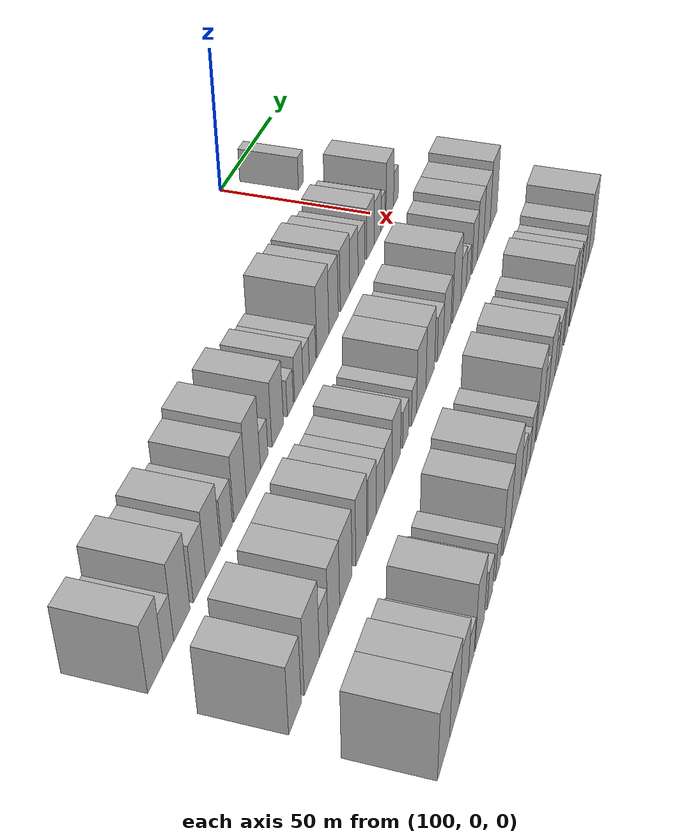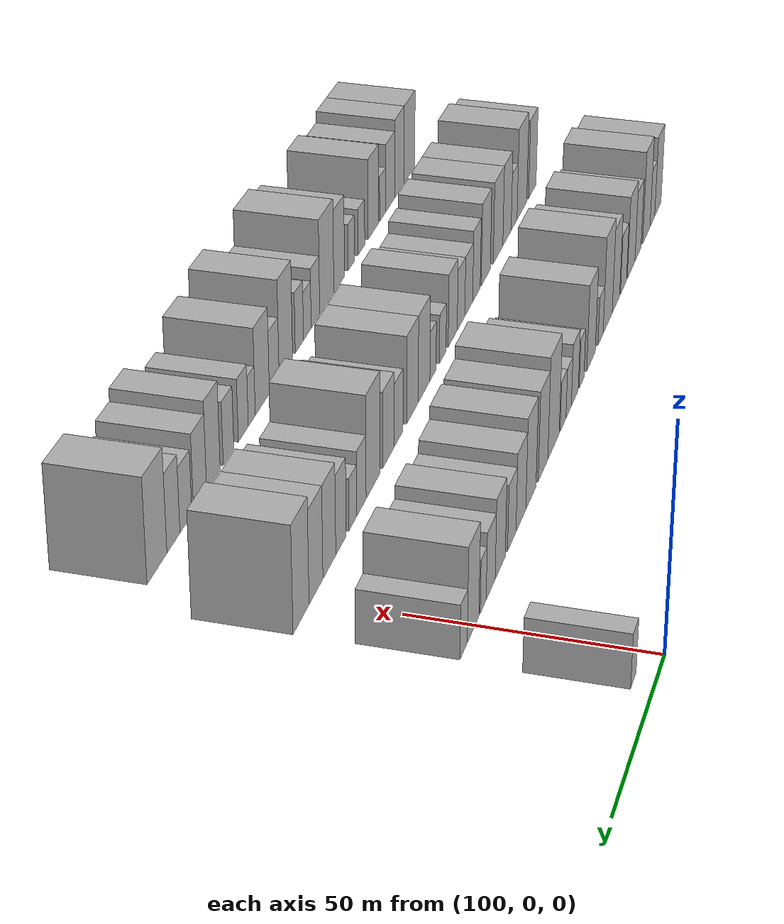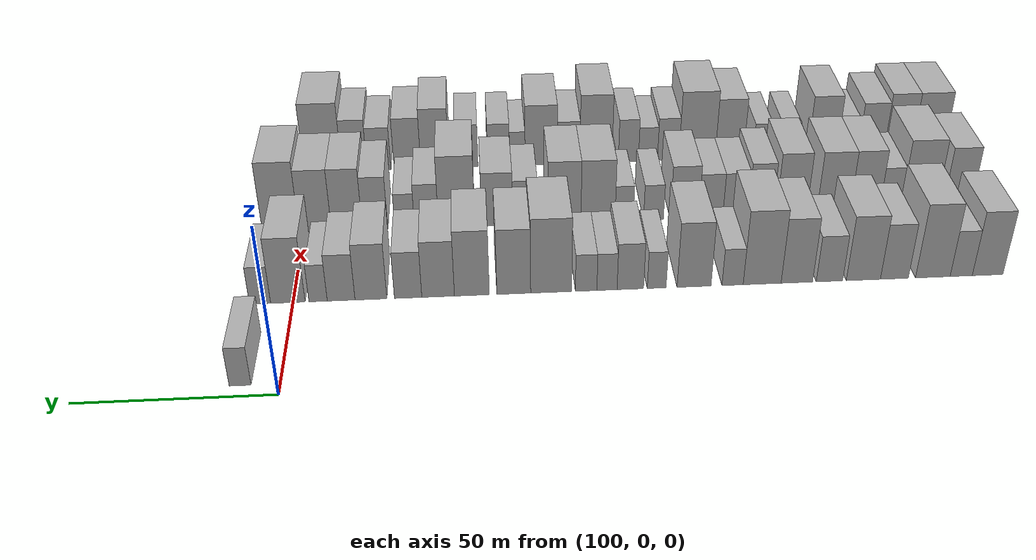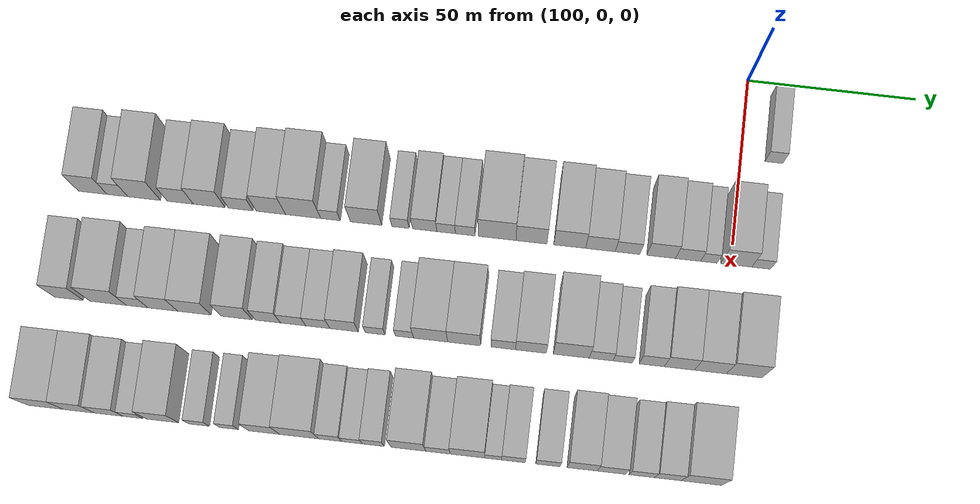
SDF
<sdf version="1.6">
 <world name="default">
  <model name="building_296">
   <static>1</static>
   <pose>114.0000 9.7664 0 0.000000 0.000000 0.000000</pose>
   <link name="link">
    <pose>0 0 6.00 0 0 0</pose>
    <collision name="collision"><geometry><box><size>20.0000 5.3011 12.0000</size></box></geometry></collision>
    <visual name="visual">
     <cast_shadows>0</cast_shadows>
     <geometry><box><size>20.0000 5.3011 12.0000</size></box></geometry>
     <material>
      <script>
       <uri>model://HANNAS_wall/materials/scripts</uri>
       <uri>model://HANNAS_wall/materials/textures</uri>
       <name>vrc/HANNAS_wall</name>
      </script>
     </material>
    </visual>
   </link>
  </model>
  <model name="building_390">
   <static>1</static>
   <pose>146.0000 -188.2562 0 0.000000 0.000000 0.000000</pose>
   <link name="link">
    <pose>0 0 10.50 0 0 0</pose>
    <collision name="collision"><geometry><box><size>20.0000 8.5476 21.0000</size></box></geometry></collision>
    <visual name="visual">
     <cast_shadows>0</cast_shadows>
     <geometry><box><size>20.0000 8.5476 21.0000</size></box></geometry>
     <material>
      <script>
       <uri>model://HANNAS_wall/materials/scripts</uri>
       <uri>model://HANNAS_wall/materials/textures</uri>
       <name>vrc/HANNAS_wall</name>
      </script>
     </material>
    </visual>
   </link>
  </model>
  <model name="building_391">
   <static>1</static>
   <pose>146.0000 -180.8974 0 0.000000 0.000000 0.000000</pose>
   <link name="link">
    <pose>0 0 7.50 0 0 0</pose>
    <collision name="collision"><geometry><box><size>20.0000 6.1699 15.0000</size></box></geometry></collision>
    <visual name="visual">
     <cast_shadows>0</cast_shadows>
     <geometry><box><size>20.0000 6.1699 15.0000</size></box></geometry>
     <material>
      <script>
       <uri>model://HANNAS_wall/materials/scripts</uri>
       <uri>model://HANNAS_wall/materials/textures</uri>
       <name>vrc/HANNAS_wall</name>
      </script>
     </material>
    </visual>
   </link>
  </model>
  <model name="building_392">
   <static>1</static>
   <pose>146.0000 -173.0046 0 0.000000 0.000000 0.000000</pose>
   <link name="link">
    <pose>0 0 12.00 0 0 0</pose>
    <collision name="collision"><geometry><box><size>20.0000 9.6157 24.0000</size></box></geometry></collision>
    <visual name="visual">
     <cast_shadows>0</cast_shadows>
     <geometry><box><size>20.0000 9.6157 24.0000</size></box></geometry>
     <material>
      <script>
       <uri>model://HANNAS_wall/materials/scripts</uri>
       <uri>model://HANNAS_wall/materials/textures</uri>
       <name>vrc/HANNAS_wall</name>
      </script>
     </material>
    </visual>
   </link>
  </model>
  <model name="building_393">
   <static>1</static>
   <pose>146.0000 -162.3353 0 0.000000 0.000000 0.000000</pose>
   <link name="link">
    <pose>0 0 9.00 0 0 0</pose>
    <collision name="collision"><geometry><box><size>20.0000 7.7229 18.0000</size></box></geometry></collision>
    <visual name="visual">
     <cast_shadows>0</cast_shadows>
     <geometry><box><size>20.0000 7.7229 18.0000</size></box></geometry>
     <material>
      <script>
       <uri>model://HANNAS_wall/materials/scripts</uri>
       <uri>model://HANNAS_wall/materials/textures</uri>
       <name>vrc/HANNAS_wall</name>
      </script>
     </material>
    </visual>
   </link>
  </model>
  <model name="building_394">
   <static>1</static>
   <pose>146.0000 -153.7605 0 0.000000 0.000000 0.000000</pose>
   <link name="link">
    <pose>0 0 10.50 0 0 0</pose>
    <collision name="collision"><geometry><box><size>20.0000 9.4267 21.0000</size></box></geometry></collision>
    <visual name="visual">
     <cast_shadows>0</cast_shadows>
     <geometry><box><size>20.0000 9.4267 21.0000</size></box></geometry>
     <material>
      <script>
       <uri>model://HANNAS_wall/materials/scripts</uri>
       <uri>model://HANNAS_wall/materials/textures</uri>
       <name>vrc/HANNAS_wall</name>
      </script>
     </material>
    </visual>
   </link>
  </model>
  <model name="building_395">
   <static>1</static>
   <pose>146.0000 -144.4049 0 0.000000 0.000000 0.000000</pose>
   <link name="link">
    <pose>0 0 7.50 0 0 0</pose>
    <collision name="collision"><geometry><box><size>20.0000 7.2845 15.0000</size></box></geometry></collision>
    <visual name="visual">
     <cast_shadows>0</cast_shadows>
     <geometry><box><size>20.0000 7.2845 15.0000</size></box></geometry>
     <material>
      <script>
       <uri>model://HANNAS_wall/materials/scripts</uri>
       <uri>model://HANNAS_wall/materials/textures</uri>
       <name>vrc/HANNAS_wall</name>
      </script>
     </material>
    </visual>
   </link>
  </model>
  <model name="building_396">
   <static>1</static>
   <pose>146.0000 -135.4375 0 0.000000 0.000000 0.000000</pose>
   <link name="link">
    <pose>0 0 10.50 0 0 0</pose>
    <collision name="collision"><geometry><box><size>20.0000 8.6502 21.0000</size></box></geometry></collision>
    <visual name="visual">
     <cast_shadows>0</cast_shadows>
     <geometry><box><size>20.0000 8.6502 21.0000</size></box></geometry>
     <material>
      <script>
       <uri>model://HANNAS_wall/materials/scripts</uri>
       <uri>model://HANNAS_wall/materials/textures</uri>
       <name>vrc/HANNAS_wall</name>
      </script>
     </material>
    </visual>
   </link>
  </model>
  <model name="building_397">
   <static>1</static>
   <pose>146.0000 -125.9174 0 0.000000 0.000000 0.000000</pose>
   <link name="link">
    <pose>0 0 12.00 0 0 0</pose>
    <collision name="collision"><geometry><box><size>20.0000 10.3900 24.0000</size></box></geometry></collision>
    <visual name="visual">
     <cast_shadows>0</cast_shadows>
     <geometry><box><size>20.0000 10.3900 24.0000</size></box></geometry>
     <material>
      <script>
       <uri>model://HANNAS_wall/materials/scripts</uri>
       <uri>model://HANNAS_wall/materials/textures</uri>
       <name>vrc/HANNAS_wall</name>
      </script>
     </material>
    </visual>
   </link>
  </model>
  <model name="building_398">
   <static>1</static>
   <pose>146.0000 -117.8290 0 0.000000 0.000000 0.000000</pose>
   <link name="link">
    <pose>0 0 6.00 0 0 0</pose>
    <collision name="collision"><geometry><box><size>20.0000 5.7867 12.0000</size></box></geometry></collision>
    <visual name="visual">
     <cast_shadows>0</cast_shadows>
     <geometry><box><size>20.0000 5.7867 12.0000</size></box></geometry>
     <material>
      <script>
       <uri>model://HANNAS_wall/materials/scripts</uri>
       <uri>model://HANNAS_wall/materials/textures</uri>
       <name>vrc/HANNAS_wall</name>
      </script>
     </material>
    </visual>
   </link>
  </model>
  <model name="building_399">
   <static>1</static>
   <pose>146.0000 -107.3196 0 0.000000 0.000000 0.000000</pose>
   <link name="link">
    <pose>0 0 10.50 0 0 0</pose>
    <collision name="collision"><geometry><box><size>20.0000 9.2320 21.0000</size></box></geometry></collision>
    <visual name="visual">
     <cast_shadows>0</cast_shadows>
     <geometry><box><size>20.0000 9.2320 21.0000</size></box></geometry>
     <material>
      <script>
       <uri>model://HANNAS_wall/materials/scripts</uri>
       <uri>model://HANNAS_wall/materials/textures</uri>
       <name>vrc/HANNAS_wall</name>
      </script>
     </material>
    </visual>
   </link>
  </model>
  <model name="building_400">
   <static>1</static>
   <pose>146.0000 -97.1501 0 0.000000 0.000000 0.000000</pose>
   <link name="link">
    <pose>0 0 6.00 0 0 0</pose>
    <collision name="collision"><geometry><box><size>20.0000 5.1070 12.0000</size></box></geometry></collision>
    <visual name="visual">
     <cast_shadows>0</cast_shadows>
     <geometry><box><size>20.0000 5.1070 12.0000</size></box></geometry>
     <material>
      <script>
       <uri>model://HANNAS_wall/materials/scripts</uri>
       <uri>model://HANNAS_wall/materials/textures</uri>
       <name>vrc/HANNAS_wall</name>
      </script>
     </material>
    </visual>
   </link>
  </model>
  <model name="building_401">
   <static>1</static>
   <pose>146.0000 -90.0124 0 0.000000 0.000000 0.000000</pose>
   <link name="link">
    <pose>0 0 7.50 0 0 0</pose>
    <collision name="collision"><geometry><box><size>20.0000 7.1685 15.0000</size></box></geometry></collision>
    <visual name="visual">
     <cast_shadows>0</cast_shadows>
     <geometry><box><size>20.0000 7.1685 15.0000</size></box></geometry>
     <material>
      <script>
       <uri>model://HANNAS_wall/materials/scripts</uri>
       <uri>model://HANNAS_wall/materials/textures</uri>
       <name>vrc/HANNAS_wall</name>
      </script>
     </material>
    </visual>
   </link>
  </model>
  <model name="building_402">
   <static>1</static>
   <pose>146.0000 -83.7031 0 0.000000 0.000000 0.000000</pose>
   <link name="link">
    <pose>0 0 6.00 0 0 0</pose>
    <collision name="collision"><geometry><box><size>20.0000 5.4501 12.0000</size></box></geometry></collision>
    <visual name="visual">
     <cast_shadows>0</cast_shadows>
     <geometry><box><size>20.0000 5.4501 12.0000</size></box></geometry>
     <material>
      <script>
       <uri>model://HANNAS_wall/materials/scripts</uri>
       <uri>model://HANNAS_wall/materials/textures</uri>
       <name>vrc/HANNAS_wall</name>
      </script>
     </material>
    </visual>
   </link>
  </model>
  <model name="building_403">
   <static>1</static>
   <pose>146.0000 -78.0756 0 0.000000 0.000000 0.000000</pose>
   <link name="link">
    <pose>0 0 6.00 0 0 0</pose>
    <collision name="collision"><geometry><box><size>20.0000 5.8050 12.0000</size></box></geometry></collision>
    <visual name="visual">
     <cast_shadows>0</cast_shadows>
     <geometry><box><size>20.0000 5.8050 12.0000</size></box></geometry>
     <material>
      <script>
       <uri>model://HANNAS_wall/materials/scripts</uri>
       <uri>model://HANNAS_wall/materials/textures</uri>
       <name>vrc/HANNAS_wall</name>
      </script>
     </material>
    </visual>
   </link>
  </model>
  <model name="building_404">
   <static>1</static>
   <pose>146.0000 -68.6565 0 0.000000 0.000000 0.000000</pose>
   <link name="link">
    <pose>0 0 12.00 0 0 0</pose>
    <collision name="collision"><geometry><box><size>20.0000 11.0331 24.0000</size></box></geometry></collision>
    <visual name="visual">
     <cast_shadows>0</cast_shadows>
     <geometry><box><size>20.0000 11.0331 24.0000</size></box></geometry>
     <material>
      <script>
       <uri>model://HANNAS_wall/materials/scripts</uri>
       <uri>model://HANNAS_wall/materials/textures</uri>
       <name>vrc/HANNAS_wall</name>
      </script>
     </material>
    </visual>
   </link>
  </model>
  <model name="building_405">
   <static>1</static>
   <pose>146.0000 -58.5982 0 0.000000 0.000000 0.000000</pose>
   <link name="link">
    <pose>0 0 10.50 0 0 0</pose>
    <collision name="collision"><geometry><box><size>20.0000 9.0837 21.0000</size></box></geometry></collision>
    <visual name="visual">
     <cast_shadows>0</cast_shadows>
     <geometry><box><size>20.0000 9.0837 21.0000</size></box></geometry>
     <material>
      <script>
       <uri>model://HANNAS_wall/materials/scripts</uri>
       <uri>model://HANNAS_wall/materials/textures</uri>
       <name>vrc/HANNAS_wall</name>
      </script>
     </material>
    </visual>
   </link>
  </model>
  <model name="building_406">
   <static>1</static>
   <pose>146.0000 -47.3877 0 0.000000 0.000000 0.000000</pose>
   <link name="link">
    <pose>0 0 10.50 0 0 0</pose>
    <collision name="collision"><geometry><box><size>20.0000 9.3373 21.0000</size></box></geometry></collision>
    <visual name="visual">
     <cast_shadows>0</cast_shadows>
     <geometry><box><size>20.0000 9.3373 21.0000</size></box></geometry>
     <material>
      <script>
       <uri>model://HANNAS_wall/materials/scripts</uri>
       <uri>model://HANNAS_wall/materials/textures</uri>
       <name>vrc/HANNAS_wall</name>
      </script>
     </material>
    </visual>
   </link>
  </model>
  <model name="building_407">
   <static>1</static>
   <pose>146.0000 -38.3652 0 0.000000 0.000000 0.000000</pose>
   <link name="link">
    <pose>0 0 9.00 0 0 0</pose>
    <collision name="collision"><geometry><box><size>20.0000 8.7076 18.0000</size></box></geometry></collision>
    <visual name="visual">
     <cast_shadows>0</cast_shadows>
     <geometry><box><size>20.0000 8.7076 18.0000</size></box></geometry>
     <material>
      <script>
       <uri>model://HANNAS_wall/materials/scripts</uri>
       <uri>model://HANNAS_wall/materials/textures</uri>
       <name>vrc/HANNAS_wall</name>
      </script>
     </material>
    </visual>
   </link>
  </model>
  <model name="building_408">
   <static>1</static>
   <pose>146.0000 -30.3760 0 0.000000 0.000000 0.000000</pose>
   <link name="link">
    <pose>0 0 7.50 0 0 0</pose>
    <collision name="collision"><geometry><box><size>20.0000 7.2709 15.0000</size></box></geometry></collision>
    <visual name="visual">
     <cast_shadows>0</cast_shadows>
     <geometry><box><size>20.0000 7.2709 15.0000</size></box></geometry>
     <material>
      <script>
       <uri>model://HANNAS_wall/materials/scripts</uri>
       <uri>model://HANNAS_wall/materials/textures</uri>
       <name>vrc/HANNAS_wall</name>
      </script>
     </material>
    </visual>
   </link>
  </model>
  <model name="building_409">
   <static>1</static>
   <pose>146.0000 -20.5138 0 0.000000 0.000000 0.000000</pose>
   <link name="link">
    <pose>0 0 9.00 0 0 0</pose>
    <collision name="collision"><geometry><box><size>20.0000 8.4535 18.0000</size></box></geometry></collision>
    <visual name="visual">
     <cast_shadows>0</cast_shadows>
     <geometry><box><size>20.0000 8.4535 18.0000</size></box></geometry>
     <material>
      <script>
       <uri>model://HANNAS_wall/materials/scripts</uri>
       <uri>model://HANNAS_wall/materials/textures</uri>
       <name>vrc/HANNAS_wall</name>
      </script>
     </material>
    </visual>
   </link>
  </model>
  <model name="building_410">
   <static>1</static>
   <pose>146.0000 -12.6102 0 0.000000 0.000000 0.000000</pose>
   <link name="link">
    <pose>0 0 7.50 0 0 0</pose>
    <collision name="collision"><geometry><box><size>20.0000 7.3537 15.0000</size></box></geometry></collision>
    <visual name="visual">
     <cast_shadows>0</cast_shadows>
     <geometry><box><size>20.0000 7.3537 15.0000</size></box></geometry>
     <material>
      <script>
       <uri>model://HANNAS_wall/materials/scripts</uri>
       <uri>model://HANNAS_wall/materials/textures</uri>
       <name>vrc/HANNAS_wall</name>
      </script>
     </material>
    </visual>
   </link>
  </model>
  <model name="building_411">
   <static>1</static>
   <pose>146.0000 -6.5187 0 0.000000 0.000000 0.000000</pose>
   <link name="link">
    <pose>0 0 6.00 0 0 0</pose>
    <collision name="collision"><geometry><box><size>20.0000 4.8294 12.0000</size></box></geometry></collision>
    <visual name="visual">
     <cast_shadows>0</cast_shadows>
     <geometry><box><size>20.0000 4.8294 12.0000</size></box></geometry>
     <material>
      <script>
       <uri>model://HANNAS_wall/materials/scripts</uri>
       <uri>model://HANNAS_wall/materials/textures</uri>
       <name>vrc/HANNAS_wall</name>
      </script>
     </material>
    </visual>
   </link>
  </model>
  <model name="building_412">
   <static>1</static>
   <pose>146.0000 1.4426 0 0.000000 0.000000 0.000000</pose>
   <link name="link">
    <pose>0 0 10.50 0 0 0</pose>
    <collision name="collision"><geometry><box><size>20.0000 9.0931 21.0000</size></box></geometry></collision>
    <visual name="visual">
     <cast_shadows>0</cast_shadows>
     <geometry><box><size>20.0000 9.0931 21.0000</size></box></geometry>
     <material>
      <script>
       <uri>model://HANNAS_wall/materials/scripts</uri>
       <uri>model://HANNAS_wall/materials/textures</uri>
       <name>vrc/HANNAS_wall</name>
      </script>
     </material>
    </visual>
   </link>
  </model>
  <model name="building_413">
   <static>1</static>
   <pose>146.0000 8.7749 0 0.000000 0.000000 0.000000</pose>
   <link name="link">
    <pose>0 0 6.00 0 0 0</pose>
    <collision name="collision"><geometry><box><size>20.0000 5.5715 12.0000</size></box></geometry></collision>
    <visual name="visual">
     <cast_shadows>0</cast_shadows>
     <geometry><box><size>20.0000 5.5715 12.0000</size></box></geometry>
     <material>
      <script>
       <uri>model://HANNAS_wall/materials/scripts</uri>
       <uri>model://HANNAS_wall/materials/textures</uri>
       <name>vrc/HANNAS_wall</name>
      </script>
     </material>
    </visual>
   </link>
  </model>
  <model name="building_501">
   <static>1</static>
   <pose>178.0000 -190.2618 0 0.000000 0.000000 0.000000</pose>
   <link name="link">
    <pose>0 0 10.50 0 0 0</pose>
    <collision name="collision"><geometry><box><size>20.0000 8.4058 21.0000</size></box></geometry></collision>
    <visual name="visual">
     <cast_shadows>0</cast_shadows>
     <geometry><box><size>20.0000 8.4058 21.0000</size></box></geometry>
     <material>
      <script>
       <uri>model://HANNAS_wall/materials/scripts</uri>
       <uri>model://HANNAS_wall/materials/textures</uri>
       <name>vrc/HANNAS_wall</name>
      </script>
     </material>
    </visual>
   </link>
  </model>
  <model name="building_502">
   <static>1</static>
   <pose>178.0000 -178.7330 0 0.000000 0.000000 0.000000</pose>
   <link name="link">
    <pose>0 0 12.00 0 0 0</pose>
    <collision name="collision"><geometry><box><size>20.0000 10.6520 24.0000</size></box></geometry></collision>
    <visual name="visual">
     <cast_shadows>0</cast_shadows>
     <geometry><box><size>20.0000 10.6520 24.0000</size></box></geometry>
     <material>
      <script>
       <uri>model://HANNAS_wall/materials/scripts</uri>
       <uri>model://HANNAS_wall/materials/textures</uri>
       <name>vrc/HANNAS_wall</name>
      </script>
     </material>
    </visual>
   </link>
  </model>
  <model name="building_503">
   <static>1</static>
   <pose>178.0000 -170.2459 0 0.000000 0.000000 0.000000</pose>
   <link name="link">
    <pose>0 0 7.50 0 0 0</pose>
    <collision name="collision"><geometry><box><size>20.0000 6.3221 15.0000</size></box></geometry></collision>
    <visual name="visual">
     <cast_shadows>0</cast_shadows>
     <geometry><box><size>20.0000 6.3221 15.0000</size></box></geometry>
     <material>
      <script>
       <uri>model://HANNAS_wall/materials/scripts</uri>
       <uri>model://HANNAS_wall/materials/textures</uri>
       <name>vrc/HANNAS_wall</name>
      </script>
     </material>
    </visual>
   </link>
  </model>
  <model name="building_504">
   <static>1</static>
   <pose>178.0000 -162.7137 0 0.000000 0.000000 0.000000</pose>
   <link name="link">
    <pose>0 0 10.50 0 0 0</pose>
    <collision name="collision"><geometry><box><size>20.0000 8.7425 21.0000</size></box></geometry></collision>
    <visual name="visual">
     <cast_shadows>0</cast_shadows>
     <geometry><box><size>20.0000 8.7425 21.0000</size></box></geometry>
     <material>
      <script>
       <uri>model://HANNAS_wall/materials/scripts</uri>
       <uri>model://HANNAS_wall/materials/textures</uri>
       <name>vrc/HANNAS_wall</name>
      </script>
     </material>
    </visual>
   </link>
  </model>
  <model name="building_505">
   <static>1</static>
   <pose>178.0000 -153.4336 0 0.000000 0.000000 0.000000</pose>
   <link name="link">
    <pose>0 0 10.50 0 0 0</pose>
    <collision name="collision"><geometry><box><size>20.0000 9.8176 21.0000</size></box></geometry></collision>
    <visual name="visual">
     <cast_shadows>0</cast_shadows>
     <geometry><box><size>20.0000 9.8176 21.0000</size></box></geometry>
     <material>
      <script>
       <uri>model://HANNAS_wall/materials/scripts</uri>
       <uri>model://HANNAS_wall/materials/textures</uri>
       <name>vrc/HANNAS_wall</name>
      </script>
     </material>
    </visual>
   </link>
  </model>
  <model name="building_506">
   <static>1</static>
   <pose>178.0000 -141.0076 0 0.000000 0.000000 0.000000</pose>
   <link name="link">
    <pose>0 0 10.50 0 0 0</pose>
    <collision name="collision"><geometry><box><size>20.0000 9.0344 21.0000</size></box></geometry></collision>
    <visual name="visual">
     <cast_shadows>0</cast_shadows>
     <geometry><box><size>20.0000 9.0344 21.0000</size></box></geometry>
     <material>
      <script>
       <uri>model://HANNAS_wall/materials/scripts</uri>
       <uri>model://HANNAS_wall/materials/textures</uri>
       <name>vrc/HANNAS_wall</name>
      </script>
     </material>
    </visual>
   </link>
  </model>
  <model name="building_507">
   <static>1</static>
   <pose>178.0000 -131.8531 0 0.000000 0.000000 0.000000</pose>
   <link name="link">
    <pose>0 0 9.00 0 0 0</pose>
    <collision name="collision"><geometry><box><size>20.0000 7.2746 18.0000</size></box></geometry></collision>
    <visual name="visual">
     <cast_shadows>0</cast_shadows>
     <geometry><box><size>20.0000 7.2746 18.0000</size></box></geometry>
     <material>
      <script>
       <uri>model://HANNAS_wall/materials/scripts</uri>
       <uri>model://HANNAS_wall/materials/textures</uri>
       <name>vrc/HANNAS_wall</name>
      </script>
     </material>
    </visual>
   </link>
  </model>
  <model name="building_508">
   <static>1</static>
   <pose>178.0000 -124.5197 0 0.000000 0.000000 0.000000</pose>
   <link name="link">
    <pose>0 0 7.50 0 0 0</pose>
    <collision name="collision"><geometry><box><size>20.0000 7.3921 15.0000</size></box></geometry></collision>
    <visual name="visual">
     <cast_shadows>0</cast_shadows>
     <geometry><box><size>20.0000 7.3921 15.0000</size></box></geometry>
     <material>
      <script>
       <uri>model://HANNAS_wall/materials/scripts</uri>
       <uri>model://HANNAS_wall/materials/textures</uri>
       <name>vrc/HANNAS_wall</name>
      </script>
     </material>
    </visual>
   </link>
  </model>
  <model name="building_509">
   <static>1</static>
   <pose>178.0000 -117.2830 0 0.000000 0.000000 0.000000</pose>
   <link name="link">
    <pose>0 0 7.50 0 0 0</pose>
    <collision name="collision"><geometry><box><size>20.0000 7.0814 15.0000</size></box></geometry></collision>
    <visual name="visual">
     <cast_shadows>0</cast_shadows>
     <geometry><box><size>20.0000 7.0814 15.0000</size></box></geometry>
     <material>
      <script>
       <uri>model://HANNAS_wall/materials/scripts</uri>
       <uri>model://HANNAS_wall/materials/textures</uri>
       <name>vrc/HANNAS_wall</name>
      </script>
     </material>
    </visual>
   </link>
  </model>
  <model name="building_510">
   <static>1</static>
   <pose>178.0000 -109.5909 0 0.000000 0.000000 0.000000</pose>
   <link name="link">
    <pose>0 0 9.00 0 0 0</pose>
    <collision name="collision"><geometry><box><size>20.0000 8.3028 18.0000</size></box></geometry></collision>
    <visual name="visual">
     <cast_shadows>0</cast_shadows>
     <geometry><box><size>20.0000 8.3028 18.0000</size></box></geometry>
     <material>
      <script>
       <uri>model://HANNAS_wall/materials/scripts</uri>
       <uri>model://HANNAS_wall/materials/textures</uri>
       <name>vrc/HANNAS_wall</name>
      </script>
     </material>
    </visual>
   </link>
  </model>
  <model name="building_511">
   <static>1</static>
   <pose>178.0000 -100.5361 0 0.000000 0.000000 0.000000</pose>
   <link name="link">
    <pose>0 0 6.00 0 0 0</pose>
    <collision name="collision"><geometry><box><size>20.0000 5.8066 12.0000</size></box></geometry></collision>
    <visual name="visual">
     <cast_shadows>0</cast_shadows>
     <geometry><box><size>20.0000 5.8066 12.0000</size></box></geometry>
     <material>
      <script>
       <uri>model://HANNAS_wall/materials/scripts</uri>
       <uri>model://HANNAS_wall/materials/textures</uri>
       <name>vrc/HANNAS_wall</name>
      </script>
     </material>
    </visual>
   </link>
  </model>
  <model name="building_512">
   <static>1</static>
   <pose>178.0000 -91.9683 0 0.000000 0.000000 0.000000</pose>
   <link name="link">
    <pose>0 0 6.00 0 0 0</pose>
    <collision name="collision"><geometry><box><size>20.0000 5.3290 12.0000</size></box></geometry></collision>
    <visual name="visual">
     <cast_shadows>0</cast_shadows>
     <geometry><box><size>20.0000 5.3290 12.0000</size></box></geometry>
     <material>
      <script>
       <uri>model://HANNAS_wall/materials/scripts</uri>
       <uri>model://HANNAS_wall/materials/textures</uri>
       <name>vrc/HANNAS_wall</name>
      </script>
     </material>
    </visual>
   </link>
  </model>
  <model name="building_513">
   <static>1</static>
   <pose>178.0000 -84.3446 0 0.000000 0.000000 0.000000</pose>
   <link name="link">
    <pose>0 0 10.50 0 0 0</pose>
    <collision name="collision"><geometry><box><size>20.0000 9.9184 21.0000</size></box></geometry></collision>
    <visual name="visual">
     <cast_shadows>0</cast_shadows>
     <geometry><box><size>20.0000 9.9184 21.0000</size></box></geometry>
     <material>
      <script>
       <uri>model://HANNAS_wall/materials/scripts</uri>
       <uri>model://HANNAS_wall/materials/textures</uri>
       <name>vrc/HANNAS_wall</name>
      </script>
     </material>
    </visual>
   </link>
  </model>
  <model name="building_514">
   <static>1</static>
   <pose>178.0000 -74.6014 0 0.000000 0.000000 0.000000</pose>
   <link name="link">
    <pose>0 0 10.50 0 0 0</pose>
    <collision name="collision"><geometry><box><size>20.0000 9.5680 21.0000</size></box></geometry></collision>
    <visual name="visual">
     <cast_shadows>0</cast_shadows>
     <geometry><box><size>20.0000 9.5680 21.0000</size></box></geometry>
     <material>
      <script>
       <uri>model://HANNAS_wall/materials/scripts</uri>
       <uri>model://HANNAS_wall/materials/textures</uri>
       <name>vrc/HANNAS_wall</name>
      </script>
     </material>
    </visual>
   </link>
  </model>
  <model name="building_515">
   <static>1</static>
   <pose>178.0000 -63.2300 0 0.000000 0.000000 0.000000</pose>
   <link name="link">
    <pose>0 0 7.50 0 0 0</pose>
    <collision name="collision"><geometry><box><size>20.0000 7.1749 15.0000</size></box></geometry></collision>
    <visual name="visual">
     <cast_shadows>0</cast_shadows>
     <geometry><box><size>20.0000 7.1749 15.0000</size></box></geometry>
     <material>
      <script>
       <uri>model://HANNAS_wall/materials/scripts</uri>
       <uri>model://HANNAS_wall/materials/textures</uri>
       <name>vrc/HANNAS_wall</name>
      </script>
     </material>
    </visual>
   </link>
  </model>
  <model name="building_516">
   <static>1</static>
   <pose>178.0000 -55.1770 0 0.000000 0.000000 0.000000</pose>
   <link name="link">
    <pose>0 0 9.00 0 0 0</pose>
    <collision name="collision"><geometry><box><size>20.0000 8.9311 18.0000</size></box></geometry></collision>
    <visual name="visual">
     <cast_shadows>0</cast_shadows>
     <geometry><box><size>20.0000 8.9311 18.0000</size></box></geometry>
     <material>
      <script>
       <uri>model://HANNAS_wall/materials/scripts</uri>
       <uri>model://HANNAS_wall/materials/textures</uri>
       <name>vrc/HANNAS_wall</name>
      </script>
     </material>
    </visual>
   </link>
  </model>
  <model name="building_517">
   <static>1</static>
   <pose>178.0000 -43.4954 0 0.000000 0.000000 0.000000</pose>
   <link name="link">
    <pose>0 0 12.00 0 0 0</pose>
    <collision name="collision"><geometry><box><size>20.0000 10.4322 24.0000</size></box></geometry></collision>
    <visual name="visual">
     <cast_shadows>0</cast_shadows>
     <geometry><box><size>20.0000 10.4322 24.0000</size></box></geometry>
     <material>
      <script>
       <uri>model://HANNAS_wall/materials/scripts</uri>
       <uri>model://HANNAS_wall/materials/textures</uri>
       <name>vrc/HANNAS_wall</name>
      </script>
     </material>
    </visual>
   </link>
  </model>
  <model name="building_518">
   <static>1</static>
   <pose>178.0000 -34.8430 0 0.000000 0.000000 0.000000</pose>
   <link name="link">
    <pose>0 0 7.50 0 0 0</pose>
    <collision name="collision"><geometry><box><size>20.0000 6.8725 15.0000</size></box></geometry></collision>
    <visual name="visual">
     <cast_shadows>0</cast_shadows>
     <geometry><box><size>20.0000 6.8725 15.0000</size></box></geometry>
     <material>
      <script>
       <uri>model://HANNAS_wall/materials/scripts</uri>
       <uri>model://HANNAS_wall/materials/textures</uri>
       <name>vrc/HANNAS_wall</name>
      </script>
     </material>
    </visual>
   </link>
  </model>
  <model name="building_519">
   <static>1</static>
   <pose>178.0000 -28.6010 0 0.000000 0.000000 0.000000</pose>
   <link name="link">
    <pose>0 0 6.00 0 0 0</pose>
    <collision name="collision"><geometry><box><size>20.0000 5.6114 12.0000</size></box></geometry></collision>
    <visual name="visual">
     <cast_shadows>0</cast_shadows>
     <geometry><box><size>20.0000 5.6114 12.0000</size></box></geometry>
     <material>
      <script>
       <uri>model://HANNAS_wall/materials/scripts</uri>
       <uri>model://HANNAS_wall/materials/textures</uri>
       <name>vrc/HANNAS_wall</name>
      </script>
     </material>
    </visual>
   </link>
  </model>
  <model name="building_520">
   <static>1</static>
   <pose>178.0000 -20.1643 0 0.000000 0.000000 0.000000</pose>
   <link name="link">
    <pose>0 0 9.00 0 0 0</pose>
    <collision name="collision"><geometry><box><size>20.0000 7.2619 18.0000</size></box></geometry></collision>
    <visual name="visual">
     <cast_shadows>0</cast_shadows>
     <geometry><box><size>20.0000 7.2619 18.0000</size></box></geometry>
     <material>
      <script>
       <uri>model://HANNAS_wall/materials/scripts</uri>
       <uri>model://HANNAS_wall/materials/textures</uri>
       <name>vrc/HANNAS_wall</name>
      </script>
     </material>
    </visual>
   </link>
  </model>
  <model name="building_521">
   <static>1</static>
   <pose>178.0000 -12.1343 0 0.000000 0.000000 0.000000</pose>
   <link name="link">
    <pose>0 0 10.50 0 0 0</pose>
    <collision name="collision"><geometry><box><size>20.0000 8.7981 21.0000</size></box></geometry></collision>
    <visual name="visual">
     <cast_shadows>0</cast_shadows>
     <geometry><box><size>20.0000 8.7981 21.0000</size></box></geometry>
     <material>
      <script>
       <uri>model://HANNAS_wall/materials/scripts</uri>
       <uri>model://HANNAS_wall/materials/textures</uri>
       <name>vrc/HANNAS_wall</name>
      </script>
     </material>
    </visual>
   </link>
  </model>
  <model name="building_522">
   <static>1</static>
   <pose>178.0000 -3.1275 0 0.000000 0.000000 0.000000</pose>
   <link name="link">
    <pose>0 0 10.50 0 0 0</pose>
    <collision name="collision"><geometry><box><size>20.0000 9.2156 21.0000</size></box></geometry></collision>
    <visual name="visual">
     <cast_shadows>0</cast_shadows>
     <geometry><box><size>20.0000 9.2156 21.0000</size></box></geometry>
     <material>
      <script>
       <uri>model://HANNAS_wall/materials/scripts</uri>
       <uri>model://HANNAS_wall/materials/textures</uri>
       <name>vrc/HANNAS_wall</name>
      </script>
     </material>
    </visual>
   </link>
  </model>
  <model name="building_523">
   <static>1</static>
   <pose>178.0000 6.6627 0 0.000000 0.000000 0.000000</pose>
   <link name="link">
    <pose>0 0 12.00 0 0 0</pose>
    <collision name="collision"><geometry><box><size>20.0000 10.3648 24.0000</size></box></geometry></collision>
    <visual name="visual">
     <cast_shadows>0</cast_shadows>
     <geometry><box><size>20.0000 10.3648 24.0000</size></box></geometry>
     <material>
      <script>
       <uri>model://HANNAS_wall/materials/scripts</uri>
       <uri>model://HANNAS_wall/materials/textures</uri>
       <name>vrc/HANNAS_wall</name>
      </script>
     </material>
    </visual>
   </link>
  </model>
  <model name="building_628">
   <static>1</static>
   <pose>210.0000 -191.7449 0 0.000000 0.000000 0.000000</pose>
   <link name="link">
    <pose>0 0 10.50 0 0 0</pose>
    <collision name="collision"><geometry><box><size>20.0000 10.3050 21.0000</size></box></geometry></collision>
    <visual name="visual">
     <cast_shadows>0</cast_shadows>
     <geometry><box><size>20.0000 10.3050 21.0000</size></box></geometry>
     <material>
      <script>
       <uri>model://HANNAS_wall/materials/scripts</uri>
       <uri>model://HANNAS_wall/materials/textures</uri>
       <name>vrc/HANNAS_wall</name>
      </script>
     </material>
    </visual>
   </link>
  </model>
  <model name="building_629">
   <static>1</static>
   <pose>210.0000 -182.0954 0 0.000000 0.000000 0.000000</pose>
   <link name="link">
    <pose>0 0 10.50 0 0 0</pose>
    <collision name="collision"><geometry><box><size>20.0000 8.9940 21.0000</size></box></geometry></collision>
    <visual name="visual">
     <cast_shadows>0</cast_shadows>
     <geometry><box><size>20.0000 8.9940 21.0000</size></box></geometry>
     <material>
      <script>
       <uri>model://HANNAS_wall/materials/scripts</uri>
       <uri>model://HANNAS_wall/materials/textures</uri>
       <name>vrc/HANNAS_wall</name>
      </script>
     </material>
    </visual>
   </link>
  </model>
  <model name="building_630">
   <static>1</static>
   <pose>210.0000 -173.4573 0 0.000000 0.000000 0.000000</pose>
   <link name="link">
    <pose>0 0 9.00 0 0 0</pose>
    <collision name="collision"><geometry><box><size>20.0000 8.2822 18.0000</size></box></geometry></collision>
    <visual name="visual">
     <cast_shadows>0</cast_shadows>
     <geometry><box><size>20.0000 8.2822 18.0000</size></box></geometry>
     <material>
      <script>
       <uri>model://HANNAS_wall/materials/scripts</uri>
       <uri>model://HANNAS_wall/materials/textures</uri>
       <name>vrc/HANNAS_wall</name>
      </script>
     </material>
    </visual>
   </link>
  </model>
  <model name="building_631">
   <static>1</static>
   <pose>210.0000 -166.4650 0 0.000000 0.000000 0.000000</pose>
   <link name="link">
    <pose>0 0 6.00 0 0 0</pose>
    <collision name="collision"><geometry><box><size>20.0000 5.7024 12.0000</size></box></geometry></collision>
    <visual name="visual">
     <cast_shadows>0</cast_shadows>
     <geometry><box><size>20.0000 5.7024 12.0000</size></box></geometry>
     <material>
      <script>
       <uri>model://HANNAS_wall/materials/scripts</uri>
       <uri>model://HANNAS_wall/materials/textures</uri>
       <name>vrc/HANNAS_wall</name>
      </script>
     </material>
    </visual>
   </link>
  </model>
  <model name="building_632">
   <static>1</static>
   <pose>210.0000 -157.9670 0 0.000000 0.000000 0.000000</pose>
   <link name="link">
    <pose>0 0 10.50 0 0 0</pose>
    <collision name="collision"><geometry><box><size>20.0000 9.2937 21.0000</size></box></geometry></collision>
    <visual name="visual">
     <cast_shadows>0</cast_shadows>
     <geometry><box><size>20.0000 9.2937 21.0000</size></box></geometry>
     <material>
      <script>
       <uri>model://HANNAS_wall/materials/scripts</uri>
       <uri>model://HANNAS_wall/materials/textures</uri>
       <name>vrc/HANNAS_wall</name>
      </script>
     </material>
    </visual>
   </link>
  </model>
  <model name="building_633">
   <static>1</static>
   <pose>210.0000 -147.3532 0 0.000000 0.000000 0.000000</pose>
   <link name="link">
    <pose>0 0 6.00 0 0 0</pose>
    <collision name="collision"><geometry><box><size>20.0000 5.9339 12.0000</size></box></geometry></collision>
    <visual name="visual">
     <cast_shadows>0</cast_shadows>
     <geometry><box><size>20.0000 5.9339 12.0000</size></box></geometry>
     <material>
      <script>
       <uri>model://HANNAS_wall/materials/scripts</uri>
       <uri>model://HANNAS_wall/materials/textures</uri>
       <name>vrc/HANNAS_wall</name>
      </script>
     </material>
    </visual>
   </link>
  </model>
  <model name="building_634">
   <static>1</static>
   <pose>210.0000 -138.6963 0 0.000000 0.000000 0.000000</pose>
   <link name="link">
    <pose>0 0 6.00 0 0 0</pose>
    <collision name="collision"><geometry><box><size>20.0000 5.3798 12.0000</size></box></geometry></collision>
    <visual name="visual">
     <cast_shadows>0</cast_shadows>
     <geometry><box><size>20.0000 5.3798 12.0000</size></box></geometry>
     <material>
      <script>
       <uri>model://HANNAS_wall/materials/scripts</uri>
       <uri>model://HANNAS_wall/materials/textures</uri>
       <name>vrc/HANNAS_wall</name>
      </script>
     </material>
    </visual>
   </link>
  </model>
  <model name="building_635">
   <static>1</static>
   <pose>210.0000 -128.5469 0 0.000000 0.000000 0.000000</pose>
   <link name="link">
    <pose>0 0 10.50 0 0 0</pose>
    <collision name="collision"><geometry><box><size>20.0000 8.9189 21.0000</size></box></geometry></collision>
    <visual name="visual">
     <cast_shadows>0</cast_shadows>
     <geometry><box><size>20.0000 8.9189 21.0000</size></box></geometry>
     <material>
      <script>
       <uri>model://HANNAS_wall/materials/scripts</uri>
       <uri>model://HANNAS_wall/materials/textures</uri>
       <name>vrc/HANNAS_wall</name>
      </script>
     </material>
    </visual>
   </link>
  </model>
  <model name="building_636">
   <static>1</static>
   <pose>210.0000 -118.3975 0 0.000000 0.000000 0.000000</pose>
   <link name="link">
    <pose>0 0 12.00 0 0 0</pose>
    <collision name="collision"><geometry><box><size>20.0000 11.3798 24.0000</size></box></geometry></collision>
    <visual name="visual">
     <cast_shadows>0</cast_shadows>
     <geometry><box><size>20.0000 11.3798 24.0000</size></box></geometry>
     <material>
      <script>
       <uri>model://HANNAS_wall/materials/scripts</uri>
       <uri>model://HANNAS_wall/materials/textures</uri>
       <name>vrc/HANNAS_wall</name>
      </script>
     </material>
    </visual>
   </link>
  </model>
  <model name="building_637">
   <static>1</static>
   <pose>210.0000 -109.3581 0 0.000000 0.000000 0.000000</pose>
   <link name="link">
    <pose>0 0 7.50 0 0 0</pose>
    <collision name="collision"><geometry><box><size>20.0000 6.6991 15.0000</size></box></geometry></collision>
    <visual name="visual">
     <cast_shadows>0</cast_shadows>
     <geometry><box><size>20.0000 6.6991 15.0000</size></box></geometry>
     <material>
      <script>
       <uri>model://HANNAS_wall/materials/scripts</uri>
       <uri>model://HANNAS_wall/materials/textures</uri>
       <name>vrc/HANNAS_wall</name>
      </script>
     </material>
    </visual>
   </link>
  </model>
  <model name="building_638">
   <static>1</static>
   <pose>210.0000 -103.0403 0 0.000000 0.000000 0.000000</pose>
   <link name="link">
    <pose>0 0 6.00 0 0 0</pose>
    <collision name="collision"><geometry><box><size>20.0000 5.9364 12.0000</size></box></geometry></collision>
    <visual name="visual">
     <cast_shadows>0</cast_shadows>
     <geometry><box><size>20.0000 5.9364 12.0000</size></box></geometry>
     <material>
      <script>
       <uri>model://HANNAS_wall/materials/scripts</uri>
       <uri>model://HANNAS_wall/materials/textures</uri>
       <name>vrc/HANNAS_wall</name>
      </script>
     </material>
    </visual>
   </link>
  </model>
  <model name="building_639">
   <static>1</static>
   <pose>210.0000 -96.9388 0 0.000000 0.000000 0.000000</pose>
   <link name="link">
    <pose>0 0 7.50 0 0 0</pose>
    <collision name="collision"><geometry><box><size>20.0000 6.2667 15.0000</size></box></geometry></collision>
    <visual name="visual">
     <cast_shadows>0</cast_shadows>
     <geometry><box><size>20.0000 6.2667 15.0000</size></box></geometry>
     <material>
      <script>
       <uri>model://HANNAS_wall/materials/scripts</uri>
       <uri>model://HANNAS_wall/materials/textures</uri>
       <name>vrc/HANNAS_wall</name>
      </script>
     </material>
    </visual>
   </link>
  </model>
  <model name="building_640">
   <static>1</static>
   <pose>210.0000 -86.8167 0 0.000000 0.000000 0.000000</pose>
   <link name="link">
    <pose>0 0 12.00 0 0 0</pose>
    <collision name="collision"><geometry><box><size>20.0000 9.9776 24.0000</size></box></geometry></collision>
    <visual name="visual">
     <cast_shadows>0</cast_shadows>
     <geometry><box><size>20.0000 9.9776 24.0000</size></box></geometry>
     <material>
      <script>
       <uri>model://HANNAS_wall/materials/scripts</uri>
       <uri>model://HANNAS_wall/materials/textures</uri>
       <name>vrc/HANNAS_wall</name>
      </script>
     </material>
    </visual>
   </link>
  </model>
  <model name="building_641">
   <static>1</static>
   <pose>210.0000 -78.2993 0 0.000000 0.000000 0.000000</pose>
   <link name="link">
    <pose>0 0 7.50 0 0 0</pose>
    <collision name="collision"><geometry><box><size>20.0000 7.0573 15.0000</size></box></geometry></collision>
    <visual name="visual">
     <cast_shadows>0</cast_shadows>
     <geometry><box><size>20.0000 7.0573 15.0000</size></box></geometry>
     <material>
      <script>
       <uri>model://HANNAS_wall/materials/scripts</uri>
       <uri>model://HANNAS_wall/materials/textures</uri>
       <name>vrc/HANNAS_wall</name>
      </script>
     </material>
    </visual>
   </link>
  </model>
  <model name="building_642">
   <static>1</static>
   <pose>210.0000 -69.8092 0 0.000000 0.000000 0.000000</pose>
   <link name="link">
    <pose>0 0 10.50 0 0 0</pose>
    <collision name="collision"><geometry><box><size>20.0000 9.9227 21.0000</size></box></geometry></collision>
    <visual name="visual">
     <cast_shadows>0</cast_shadows>
     <geometry><box><size>20.0000 9.9227 21.0000</size></box></geometry>
     <material>
      <script>
       <uri>model://HANNAS_wall/materials/scripts</uri>
       <uri>model://HANNAS_wall/materials/textures</uri>
       <name>vrc/HANNAS_wall</name>
      </script>
     </material>
    </visual>
   </link>
  </model>
  <model name="building_643">
   <static>1</static>
   <pose>210.0000 -62.4353 0 0.000000 0.000000 0.000000</pose>
   <link name="link">
    <pose>0 0 6.00 0 0 0</pose>
    <collision name="collision"><geometry><box><size>20.0000 4.8252 12.0000</size></box></geometry></collision>
    <visual name="visual">
     <cast_shadows>0</cast_shadows>
     <geometry><box><size>20.0000 4.8252 12.0000</size></box></geometry>
     <material>
      <script>
       <uri>model://HANNAS_wall/materials/scripts</uri>
       <uri>model://HANNAS_wall/materials/textures</uri>
       <name>vrc/HANNAS_wall</name>
      </script>
     </material>
    </visual>
   </link>
  </model>
  <model name="building_644">
   <static>1</static>
   <pose>210.0000 -56.6483 0 0.000000 0.000000 0.000000</pose>
   <link name="link">
    <pose>0 0 7.50 0 0 0</pose>
    <collision name="collision"><geometry><box><size>20.0000 6.7488 15.0000</size></box></geometry></collision>
    <visual name="visual">
     <cast_shadows>0</cast_shadows>
     <geometry><box><size>20.0000 6.7488 15.0000</size></box></geometry>
     <material>
      <script>
       <uri>model://HANNAS_wall/materials/scripts</uri>
       <uri>model://HANNAS_wall/materials/textures</uri>
       <name>vrc/HANNAS_wall</name>
      </script>
     </material>
    </visual>
   </link>
  </model>
  <model name="building_645">
   <static>1</static>
   <pose>210.0000 -46.7862 0 0.000000 0.000000 0.000000</pose>
   <link name="link">
    <pose>0 0 7.50 0 0 0</pose>
    <collision name="collision"><geometry><box><size>20.0000 6.9754 15.0000</size></box></geometry></collision>
    <visual name="visual">
     <cast_shadows>0</cast_shadows>
     <geometry><box><size>20.0000 6.9754 15.0000</size></box></geometry>
     <material>
      <script>
       <uri>model://HANNAS_wall/materials/scripts</uri>
       <uri>model://HANNAS_wall/materials/textures</uri>
       <name>vrc/HANNAS_wall</name>
      </script>
     </material>
    </visual>
   </link>
  </model>
  <model name="building_646">
   <static>1</static>
   <pose>210.0000 -36.9699 0 0.000000 0.000000 0.000000</pose>
   <link name="link">
    <pose>0 0 10.50 0 0 0</pose>
    <collision name="collision"><geometry><box><size>20.0000 8.6572 21.0000</size></box></geometry></collision>
    <visual name="visual">
     <cast_shadows>0</cast_shadows>
     <geometry><box><size>20.0000 8.6572 21.0000</size></box></geometry>
     <material>
      <script>
       <uri>model://HANNAS_wall/materials/scripts</uri>
       <uri>model://HANNAS_wall/materials/textures</uri>
       <name>vrc/HANNAS_wall</name>
      </script>
     </material>
    </visual>
   </link>
  </model>
  <model name="building_647">
   <static>1</static>
   <pose>210.0000 -28.5526 0 0.000000 0.000000 0.000000</pose>
   <link name="link">
    <pose>0 0 9.00 0 0 0</pose>
    <collision name="collision"><geometry><box><size>20.0000 8.1773 18.0000</size></box></geometry></collision>
    <visual name="visual">
     <cast_shadows>0</cast_shadows>
     <geometry><box><size>20.0000 8.1773 18.0000</size></box></geometry>
     <material>
      <script>
       <uri>model://HANNAS_wall/materials/scripts</uri>
       <uri>model://HANNAS_wall/materials/textures</uri>
       <name>vrc/HANNAS_wall</name>
      </script>
     </material>
    </visual>
   </link>
  </model>
  <model name="building_648">
   <static>1</static>
   <pose>210.0000 -19.8248 0 0.000000 0.000000 0.000000</pose>
   <link name="link">
    <pose>0 0 7.50 0 0 0</pose>
    <collision name="collision"><geometry><box><size>20.0000 7.2784 15.0000</size></box></geometry></collision>
    <visual name="visual">
     <cast_shadows>0</cast_shadows>
     <geometry><box><size>20.0000 7.2784 15.0000</size></box></geometry>
     <material>
      <script>
       <uri>model://HANNAS_wall/materials/scripts</uri>
       <uri>model://HANNAS_wall/materials/textures</uri>
       <name>vrc/HANNAS_wall</name>
      </script>
     </material>
    </visual>
   </link>
  </model>
  <model name="building_649">
   <static>1</static>
   <pose>210.0000 -12.3349 0 0.000000 0.000000 0.000000</pose>
   <link name="link">
    <pose>0 0 9.00 0 0 0</pose>
    <collision name="collision"><geometry><box><size>20.0000 7.7014 18.0000</size></box></geometry></collision>
    <visual name="visual">
     <cast_shadows>0</cast_shadows>
     <geometry><box><size>20.0000 7.7014 18.0000</size></box></geometry>
     <material>
      <script>
       <uri>model://HANNAS_wall/materials/scripts</uri>
       <uri>model://HANNAS_wall/materials/textures</uri>
       <name>vrc/HANNAS_wall</name>
      </script>
     </material>
    </visual>
   </link>
  </model>
  <model name="building_650">
   <static>1</static>
   <pose>210.0000 -2.7345 0 0.000000 0.000000 0.000000</pose>
   <link name="link">
    <pose>0 0 12.00 0 0 0</pose>
    <collision name="collision"><geometry><box><size>20.0000 11.4993 24.0000</size></box></geometry></collision>
    <visual name="visual">
     <cast_shadows>0</cast_shadows>
     <geometry><box><size>20.0000 11.4993 24.0000</size></box></geometry>
     <material>
      <script>
       <uri>model://HANNAS_wall/materials/scripts</uri>
       <uri>model://HANNAS_wall/materials/textures</uri>
       <name>vrc/HANNAS_wall</name>
      </script>
     </material>
    </visual>
   </link>
  </model>
 </world>
</sdf>
